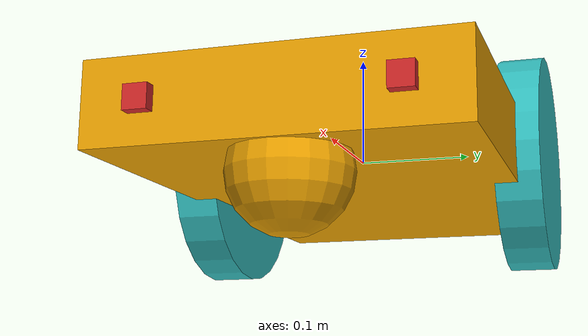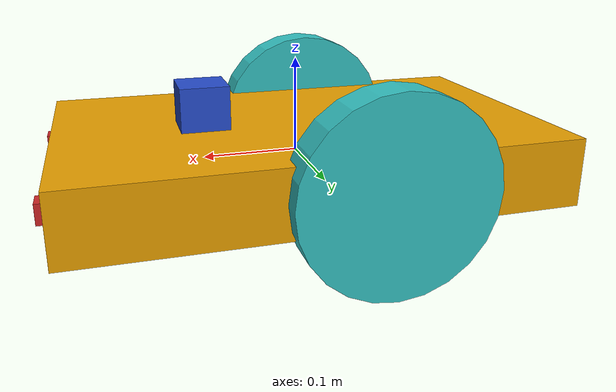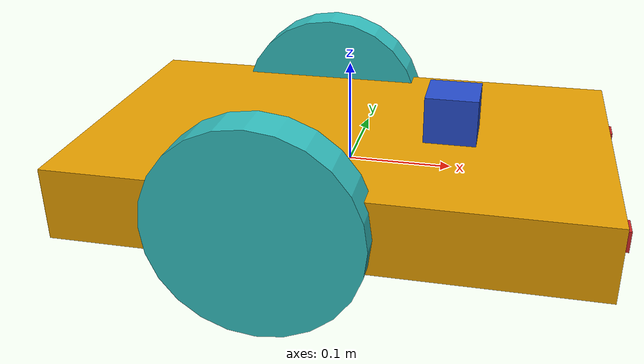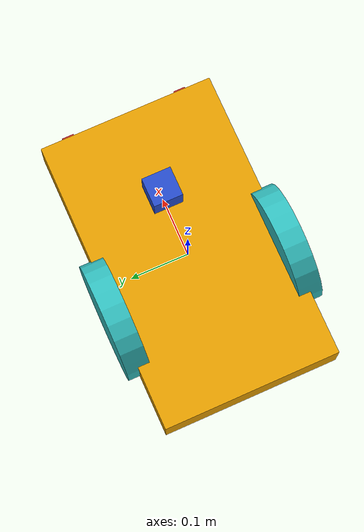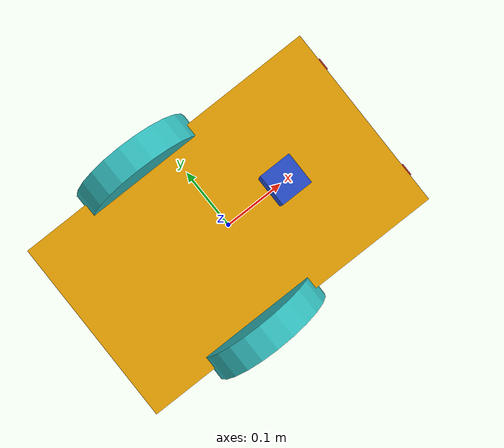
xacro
<?xml version="1.0" ?>
<!--rosrun gazebo_ros spawn_model -file ~/Simulation/src/diff_drive_description/urdf/diff_drive.urdf -urdf -x 1 -model diff_drive-->
<!--rosrun teleop_twist_keyboard teleop_twist_keyboard.py-->
<robot name="RoboBot" xmlns:xacro="https://www.ros.org/wiki/xacro" >

    <gazebo reference="left_wheel">
      <material>Gazebo/Turquoise</material>
    </gazebo>
    <gazebo reference="right_wheel">
      <material>Gazebo/Turquoise</material>
    </gazebo>

    <gazebo>
      <plugin filename="libgazebo_ros_diff_drive.so" name="differential_drive_controller">
        <legacyMode>false</legacyMode>
        <alwaysOn>true</alwaysOn>
        <updateRate>20</updateRate>
        <leftJoint>left_wheel_joint</leftJoint>
        <rightJoint>right_wheel_joint</rightJoint>
        <wheelSeparation>0.2</wheelSeparation>
        <wheelDiameter>0.2</wheelDiameter>
        <torque>0.2</torque>
        <commandTopic>cmd_vel</commandTopic>
        <odometryTopic>odom</odometryTopic>
        <odometryFrame>odom</odometryFrame>
        <robotBaseFrame>chassis</robotBaseFrame>
      </plugin>
    </gazebo>

    <link name="chassis">
      <pose>0 0 0.1 0 0 0</pose>
      <inertial>
        <mass value="5"/>
        <origin rpy="0 0 0" xyz="0 0 0.1"/>
        <inertia ixx="0.0395" ixy="0" ixz="0" iyy="0.1062" iyz="0" izz="0.1062"/>
      </inertial>

      <collision>
        <geometry>
          <box size="0.5 0.3 0.07"/>
        </geometry>
      </collision>

      <visual>
        <origin rpy="0 0 0" xyz="0 0 0"/>
        <geometry>
          <box size="0.5 0.3 0.07"/>
        </geometry>
      </visual>

      <collision >
        <origin rpy=" 0 0 0" xyz="0.35 0 -0.05"/>
        <geometry>
          <sphere radius="0.05"/>
        </geometry>
        <surface>
          <friction>
            <ode>
              <mu>0</mu>
              <mu2>0</mu2>
              <slip1>1.0</slip1>
              <slip2>1.0</slip2>
            </ode>
          </friction>
        </surface>
      </collision>

      <visual>
        <origin rpy=" 0 0 0" xyz="0.2 0 -0.05"/>
        <geometry>
          <sphere radius="0.05"/>
        </geometry>
      </visual>

    </link>
    <link name="right_wheel">
      <inertial>
        <mass value="0.2"/>
        <origin rpy="0 1.5707 1.5707" xyz="0 0 0"/>
        <inertia ixx="0.0005" ixy="0" ixz="0" iyy="0.0005" iyz="0" izz="0.001"/>
      </inertial>

      <collision>
        <origin rpy="0 1.5707 1.5707" xyz="0 0 0"/>
        <geometry>
          <cylinder length="0.04" radius="0.1"/>
        </geometry>
      </collision>

      <visual>
        <origin rpy="0 1.5707 1.5707" xyz="0 0 0"/>
        <geometry>
          <cylinder length="0.04" radius="0.1"/>
        </geometry>

      </visual>

    </link>

    <link name="left_wheel">
      <inertial>
        <mass value="0.2"/>
        <origin rpy="0 1.5707 1.5707" xyz="0 0 0"/>
        <inertia ixx="0.0005" ixy="0" ixz="0" iyy="0.0005" iyz="0" izz="0.001"/>
      </inertial>

      <collision>
        <origin rpy="0 1.5707 1.5707" xyz="0 0 0"/>
        <geometry>
          <cylinder length="0.04" radius="0.1"/>
        </geometry>
      </collision>

      <visual>
        <origin rpy="0 1.5707 1.5707" xyz="0 0 0"/>
        <geometry>
          <cylinder length="0.04" radius="0.1"/>
        </geometry>
      </visual>

    </link>
    <joint type="continuous" name="right_wheel_joint">
      <origin rpy="0 0 0" xyz="-0.05 0.15 0"/>
      <child link="right_wheel"/>
      <parent link="chassis"/>
      <axis rpy="0 0 0" xyz="0 1 0"/>
    </joint>

    <joint type="continuous" name="left_wheel_joint" >
      <origin rpy="0 0 0" xyz="-0.05 -0.15 0"/>
      <child link="left_wheel"/>
      <parent link="chassis"/>
      <axis rpy="0 0 0" xyz="0 1 0"/>
    </joint>

    <!--camera_1-->
    <link name="camera_1">
    <collision>
      <origin xyz="0 0 0" rpy="0 0 0"/>
      <geometry>
    <box size="0.02 0.02 0.02"/>
      </geometry>
    </collision>

    <visual>
      <origin xyz="0 0 0" rpy="0 0 0"/>
      <geometry>
    <box size="0.02 0.02 0.02"/>
      </geometry>

    </visual>

    <inertial>
      <mass value="1e-5" />
      <origin xyz="0.25 0.1 0" rpy="0 0 0"/>
      <inertia ixx="1e-6" ixy="0" ixz="0" iyy="1e-6" iyz="0" izz="1e-6" />
    </inertial>
  </link>
  <joint name="camera_1_joint" type="fixed">
    <axis xyz="0 1 0" />
    <origin xyz="0.25 0.1 0" rpy="0 0 0"/>
    <parent link="chassis"/>
    <child link="camera_1"/>
  </joint>
 <gazebo reference="camera_1">
    <material>Gazebo/Red</material>
    <sensor type="camera" name="camera1">
      <update_rate>30.0</update_rate>
      <camera name="head">
        <horizontal_fov>1.3962634</horizontal_fov>
        <image>
          <width>800</width>
          <height>800</height>
          <format>R8G8B8</format>
        </image>
        <clip>
          <near>0.02</near>
          <far>300</far>
        </clip>
        <noise>
          <type>gaussian</type>
          <!-- Noise is sampled independently per pixel on each frame.
               That pixel's noise value is added to each of its color
               channels, which at that point lie in the range [0,1]. -->
          <mean>0.0</mean>
          <stddev>0.007</stddev>
        </noise>
      </camera>
      <plugin name="camera_controller" filename="libgazebo_ros_camera.so">
        <alwaysOn>true</alwaysOn>
        <updateRate>0.0</updateRate>
        <cameraName>RoboBot/camera1</cameraName>
        <imageTopicName>image_raw</imageTopicName>
        <cameraInfoTopicName>camera_info</cameraInfoTopicName>
        <frameName>camera_1</frameName>
        <hackBaseline>0.07</hackBaseline>
        <distortionK1>0.0</distortionK1>
        <distortionK2>0.0</distortionK2>
        <distortionK3>0.0</distortionK3>
        <distortionT1>0.0</distortionT1>
        <distortionT2>0.0</distortionT2>
      </plugin>
    </sensor>
  </gazebo>

  <!--camera_2-->
  <link name="camera_2">
    <collision>
     <geometry>
    <box size="0.02 0.02 0.02"/>
      </geometry>
    </collision>

    <visual>
      <origin xyz="0 0 0" rpy="0 0 0"/>
      <geometry>
    <box size="0.02 0.02 0.02"/>
      </geometry>

    </visual>

    <inertial>
      <mass value="1e-5" />
      <origin xyz="0.25 -0.1 0" rpy="0 0 0"/>
      <inertia ixx="1e-6" ixy="0" ixz="0" iyy="1e-6" iyz="0" izz="1e-6" />
    </inertial>
  </link>
  <joint name="camera_2_joint" type="fixed">
    <axis xyz="0 1 0" />
    <origin xyz="0.25 -0.1 0" rpy="0 0 0"/>
    <parent link="chassis"/>
    <child link="camera_2"/>
  </joint>
 <gazebo reference="camera_2">
    <material>Gazebo/Red</material>
    <sensor type="camera" name="camera2">
      <update_rate>30.0</update_rate>
      <camera name="head">
        <horizontal_fov>1.3962634</horizontal_fov>
        <image>
          <width>800</width>
          <height>800</height>
          <format>R8G8B8</format>
        </image>
        <clip>
          <near>0.02</near>
          <far>300</far>
        </clip>
        <noise>
          <type>gaussian</type>
          <!-- Noise is sampled independently per pixel on each frame.
               That pixel's noise value is added to each of its color
               channels, which at that point lie in the range [0,1]. -->
          <mean>0.0</mean>
          <stddev>0.007</stddev>
        </noise>
      </camera>
      <plugin name="camera_controller" filename="libgazebo_ros_camera.so">
        <alwaysOn>true</alwaysOn>
        <updateRate>0.0</updateRate>
        <cameraName>RoboBot/camera_2</cameraName>
        <imageTopicName>image_raw</imageTopicName>
        <cameraInfoTopicName>camera_info</cameraInfoTopicName>
        <frameName>camera_2</frameName>
        <hackBaseline>0.07</hackBaseline>
        <distortionK1>0.0</distortionK1>
        <distortionK2>0.0</distortionK2>
        <distortionK3>0.0</distortionK3>
        <distortionT1>0.0</distortionT1>
        <distortionT2>0.0</distortionT2>
      </plugin>
    </sensor>
  </gazebo>
<!--laser-->

  <link name="hokuyo_link">
    <visual>
      <origin rpy="0 0 0" xyz="0 0 0"/>
      <geometry>
        <box size="0.05 0.05 0.05"/>
      </geometry>
      <material name="Blue"/>
    </visual>
  </link>
  <joint name="hokuyo_joint" type="fixed">
    <origin rpy="0 0 0" xyz="0.1 0 0.055"/>
    <parent link="chassis"/>
    <child link="hokuyo_link"/>
  </joint>
  <gazebo reference="hokuyo_link">
    <material>Gazebo/Blue</material>
    <turnGravityOff>false</turnGravityOff>
    <sensor name="head_hokuyo_sensor" type="ray">
      <pose>0.025 0 0 0 0 0</pose>
      <visualize>false</visualize>
      <update_rate>40</update_rate>
      <ray>
        <scan>
          <horizontal>
            <samples>720</samples>
            <resolution>1</resolution>
            <min_angle>-1.570796</min_angle>
            <max_angle>1.570796</max_angle>
          </horizontal>
        </scan>
        <range>
          <min>0.10</min>
          <max>10.0</max>
          <resolution>0.001</resolution>
        </range>
      </ray>
      <plugin filename="libgazebo_ros_laser.so" name="gazebo_ros_head_hokuyo_controller">
        <topicName>/RoboBot/laser/scan</topicName>
        <frameName>hokuyo_link</frameName>
      </plugin>
    </sensor>
  </gazebo>

</robot>
